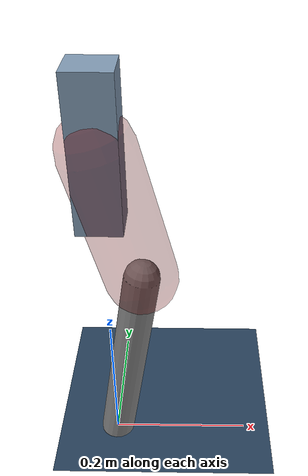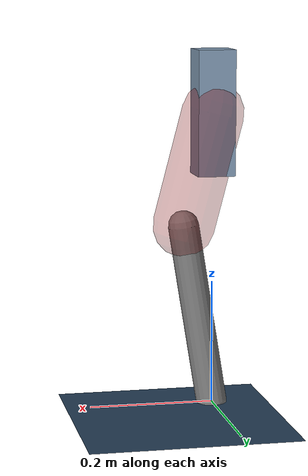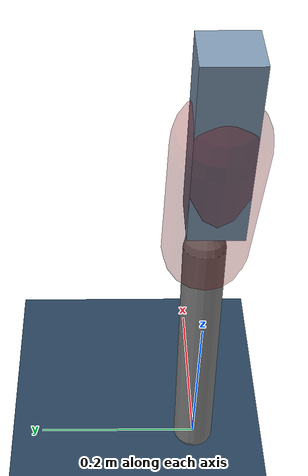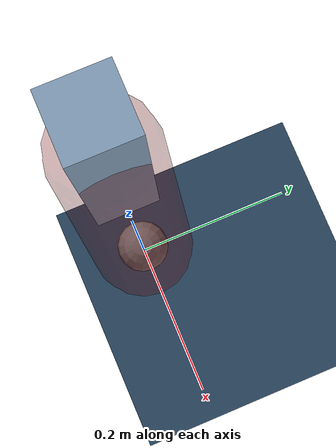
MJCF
<mujoco model="Hopper2D">
	<compiler inertiafromgeom="true" angle="radian" />
	<option timestep="0.001" integrator="implicit" cone="elliptic" solver="Newton" tolerance="1e-10" />

	<default>
		<geom contype="1" conaffinity="1" condim="3" friction="2 0.005 0.0001" solref="0.005 1" />
		<joint limited="true" damping="0.1" />
	</default>

	<asset>
		<texture name="skybox" type="skybox" builtin="gradient" rgb1=".4 .6 .8" rgb2="0 0 0" width="800" height="800" />
		<texture name="grid" type="2d" builtin="checker" rgb1=".1 .2 .3" rgb2=".2 .3 .4" width="300" height="300" mark="edge" markrgb=".2 .3 .4" />
		<material name="ground" texture="grid" texrepeat="1 1" texuniform="true" reflectance="0.1" />
		<material name="leg" rgba="0.5 0.6 0.7 1" />
	</asset>

	<worldbody>

		<geom name="floor" type="plane" size="5 5 0.25" material="ground" />

		<light directional="false" diffuse="0.8 0.8 0.8" specular="0.3 0.3 0.3" pos="0 0 2" dir="0 0 -1" />
		<light mode="targetbodycom" target="base" directional="false" diffuse="0.8 0.8 0.8" specular="0.3 0.3 0.3" pos="0 0 2" dir="0 0 -1" />

		<camera name="fixed" pos="0 -2 1" xyaxes="1 0 0 0 0 1" />
		<camera name="tracking" mode="trackcom" pos="0 -3 1" />

		<body name="root" pos="0 0 0.47550096114428547">
			<joint name="slide_x" type="slide" axis="1 0 0" range="-100 100" />
			<joint name="slide_z" type="slide" axis="0 0 1" range="0 10" />

			<body name="base" pos="0 0 0">
				<geom name="torso" type="box" size="0.03 0.03 0.1" mass="2.008" material="leg" />

				<body name="link1" pos="0 0 0" euler="0 1.3146606516624413 0">
					<joint type="hinge" axis="0 -1 0" pos="0 0 0" name="hinge1" limited="true" range="-3.14 3.14" stiffness="0" damping="0.1" />
					<geom name="thigh" type="capsule" fromto="0 0 0 0.18833834189637327 0 0" size="0.05" rgba="0.5 0 0 0.3" mass="0.7009120205512959" />

					<body name="link2" pos="0.18833834189637327 0 0" euler="0 0.41740046737483744 0">
						<joint type="hinge" axis="0 -1 0" pos="0 0 0" name="hinge2" limited="true" range="-3.14 3.14" stiffness="0" damping="0.1" />
						<geom name="shank" type="capsule" fromto="0 0 0 0.2971626192479122 0 0" size="0.025" mass="0.48113009539832974" />

					</body>
				</body>
			</body>
		</body>
	</worldbody>

	<actuator>
		<motor name="torque1" joint="hinge1" ctrlrange="-14.08626781089176 14.08626781089176" ctrllimited="true" gear="1" />
		<motor name="torque2" joint="hinge2" ctrlrange="-24.289760526913028 24.289760526913028" ctrllimited="true" gear="1" />
	</actuator>
</mujoco>
